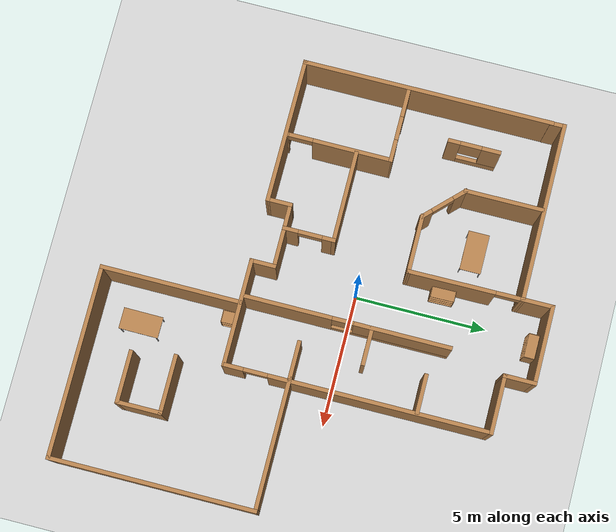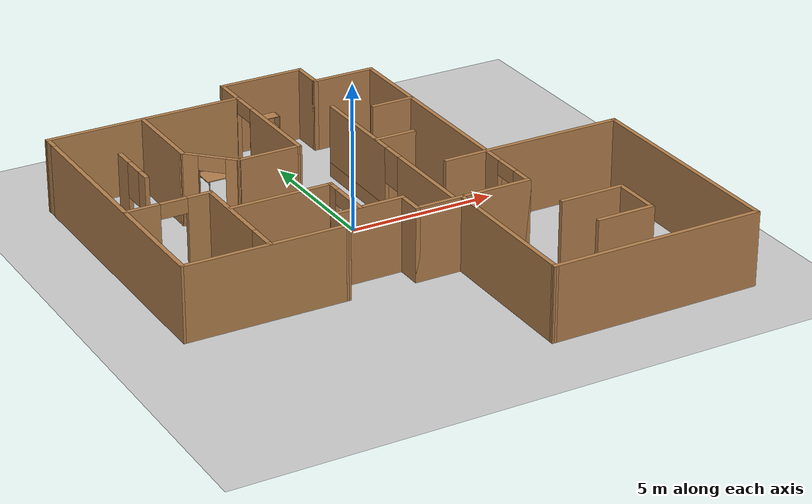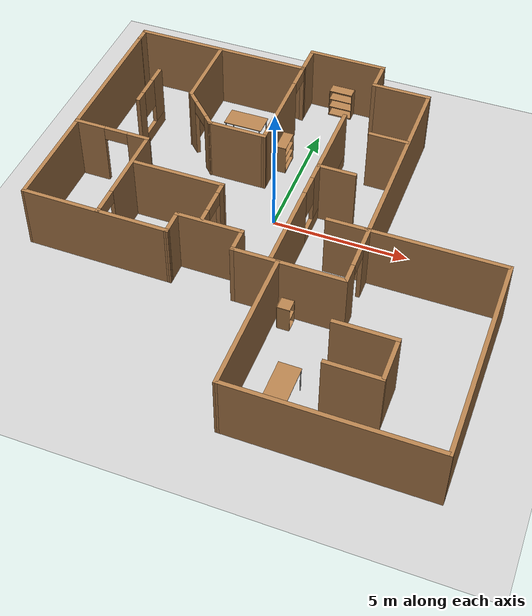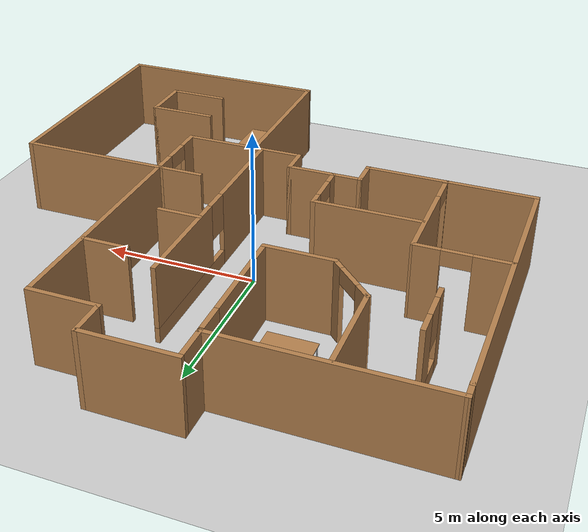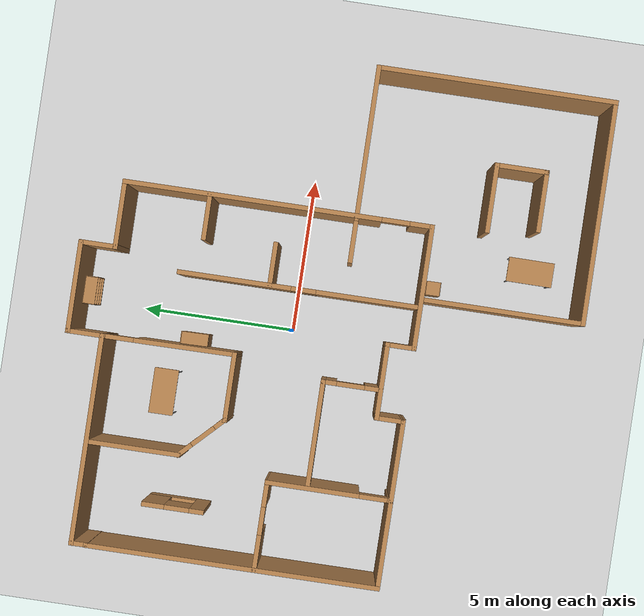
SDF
<sdf version="1.7">
 <world name="default">
  <light name="sun" type="directional">
   <pose>0 0 10 0 -0 0</pose>
   <diffuse>0.8 0.8 0.8 1</diffuse>
   <specular>0.2 0.2 0.2 1</specular>
   <attenuation>
    <range>1000</range>
    <constant>0.9</constant>
    <linear>0.01</linear>
    <quadratic>0.001</quadratic>
   </attenuation>
   <direction>-0.5 0.1 -0.9</direction>
   <spot><inner_angle>0</inner_angle><outer_angle>0</outer_angle><falloff>0</falloff></spot>
  </light>
  <model name="ground_plane">
   <static>1</static>
   <link name="link">
    <collision name="collision">
     <geometry><plane><normal>0 0 1</normal><size>100 100</size></plane></geometry>
     <surface><friction><ode><mu>100</mu><mu2>50</mu2></ode></friction></surface>
    </collision>
    <visual name="visual">
     <cast_shadows>0</cast_shadows>
     <geometry><plane><normal>0 0 1</normal><size>100 100</size></plane></geometry>
     <material>
      <script><uri>file://media/materials/scripts/gazebo.material</uri><name>Gazebo/Grey</name></script>
     </material>
    </visual>
   </link>
  </model>
  <gravity>0 0 -9.8</gravity>
  <magnetic_field>6e-06 2.3e-05 -4.2e-05</magnetic_field>
  <atmosphere type="adiabatic"/>
  <physics type="ode">
   <max_step_size>0.001</max_step_size>
   <real_time_factor>1</real_time_factor>
   <real_time_update_rate>1000</real_time_update_rate>
  </physics>
  <scene><ambient>0.4 0.4 0.4 1</ambient><background>0.7 0.7 0.7 1</background><shadows>1</shadows></scene>
  <audio><device>default</device></audio>
  <spherical_coordinates>
   <surface_model>EARTH_WGS84</surface_model>
   <latitude_deg>0</latitude_deg>
   <longitude_deg>0</longitude_deg>
   <elevation>0</elevation>
   <heading_deg>0</heading_deg>
  </spherical_coordinates>
  <model name="office_floor_plan">
   <pose>0.49547 -1.06959 0 0 -0 0</pose>
   <link name="Wall_20">
    <collision name="Wall_20_Collision">
     <geometry><box><size>9.51 0.15 2.5</size></box></geometry>
     <pose>0 0 1.25 0 -0 0</pose>
    </collision>
    <visual name="Wall_20_Visual">
     <pose>0 0 1.25 0 -0 0</pose>
     <geometry><box><size>9.51 0.15 2.5</size></box></geometry>
     <material>
      <script><uri>file://media/materials/scripts/gazebo.material</uri><name>Gazebo/Wood</name></script>
      <ambient>1 1 1 1</ambient>
     </material>
     <meta><layer>0</layer></meta>
    </visual>
    <pose>-8.18167 1.82789 0 0 -0 -1.5708</pose>
   </link>
   <link name="Wall_22">
    <pose>3.41833 2.04289 0 0 -0 1.5708</pose>
    <visual name="Wall_22_Visual_0">
     <pose>-4.60429 0 1.25 0 -0 0</pose>
     <geometry><box><size>0.791419 0.15 2.5</size></box></geometry>
     <material>
      <script><uri>file://media/materials/scripts/gazebo.material</uri><name>Gazebo/Wood</name></script>
      <ambient>1 1 1 1</ambient>
     </material>
     <meta><layer>0</layer></meta>
    </visual>
    <collision name="Wall_22_Collision_0">
     <geometry><box><size>0.791419 0.15 2.5</size></box></geometry>
     <pose>-4.60429 0 1.25 0 -0 0</pose>
    </collision>
    <visual name="Wall_22_Visual_1">
     <pose>0.84571 0 1.25 0 -0 0</pose>
     <geometry><box><size>8.30858 0.15 2.5</size></box></geometry>
     <material>
      <script><uri>file://media/materials/scripts/gazebo.material</uri><name>Gazebo/Wood</name></script>
      <ambient>1 1 1 1</ambient>
     </material>
     <meta><layer>0</layer></meta>
    </visual>
    <collision name="Wall_22_Collision_1">
     <geometry><box><size>8.30858 0.15 2.5</size></box></geometry>
     <pose>0.84571 0 1.25 0 -0 0</pose>
    </collision>
    <visual name="Wall_22_Visual_2">
     <pose>-3.75858 0 2.25 0 -0 0</pose>
     <geometry><box><size>0.9 0.15 0.5</size></box></geometry>
     <material>
      <script><uri>file://media/materials/scripts/gazebo.material</uri><name>Gazebo/Wood</name></script>
      <ambient>1 1 1 1</ambient>
     </material>
     <meta><layer>0</layer></meta>
    </visual>
    <collision name="Wall_22_Collision_2">
     <geometry><box><size>0.9 0.15 0.5</size></box></geometry>
     <pose>-3.75858 0 2.25 0 -0 0</pose>
    </collision>
   </link>
   <link name="Wall_23">
    <collision name="Wall_23_Collision">
     <geometry><box><size>2.25 0.15 2.5</size></box></geometry>
     <pose>0 0 1.25 0 -0 0</pose>
    </collision>
    <visual name="Wall_23_Visual">
     <pose>0 0 1.25 0 -0 0</pose>
     <geometry><box><size>2.25 0.15 2.5</size></box></geometry>
     <material>
      <script><uri>file://media/materials/scripts/gazebo.material</uri><name>Gazebo/Wood</name></script>
      <ambient>1 1 1 1</ambient>
     </material>
     <meta><layer>0</layer></meta>
    </visual>
    <pose>2.36833 6.9679 0 0 -0 3.14159</pose>
   </link>
   <link name="Wall_24">
    <collision name="Wall_24_Collision">
     <geometry><box><size>1.25 0.15 2.5</size></box></geometry>
     <pose>0 0 1.25 0 -0 0</pose>
    </collision>
    <visual name="Wall_24_Visual">
     <pose>0 0 1.25 0 -0 0</pose>
     <geometry><box><size>1.25 0.15 2.5</size></box></geometry>
     <material>
      <script><uri>file://media/materials/scripts/gazebo.material</uri><name>Gazebo/Wood</name></script>
      <ambient>1 1 1 1</ambient>
     </material>
     <meta><layer>0</layer></meta>
    </visual>
    <pose>1.31833 7.51789 0 0 -0 1.5708</pose>
   </link>
   <link name="Wall_25">
    <collision name="Wall_25_Collision">
     <geometry><box><size>3 0.15 2.5</size></box></geometry>
     <pose>0 0 1.25 0 -0 0</pose>
    </collision>
    <visual name="Wall_25_Visual">
     <pose>0 0 1.25 0 -0 0</pose>
     <geometry><box><size>3 0.15 2.5</size></box></geometry>
     <material>
      <script><uri>file://media/materials/scripts/gazebo.material</uri><name>Gazebo/Wood</name></script>
      <ambient>1 1 1 1</ambient>
     </material>
     <meta><layer>0</layer></meta>
    </visual>
    <pose>-0.106671 8.06789 0 0 -0 3.14159</pose>
   </link>
   <link name="Wall_26">
    <collision name="Wall_26_Collision">
     <geometry><box><size>1.25 0.15 2.5</size></box></geometry>
     <pose>0 0 1.25 0 -0 0</pose>
    </collision>
    <visual name="Wall_26_Visual">
     <pose>0 0 1.25 0 -0 0</pose>
     <geometry><box><size>1.25 0.15 2.5</size></box></geometry>
     <material>
      <script><uri>file://media/materials/scripts/gazebo.material</uri><name>Gazebo/Wood</name></script>
      <ambient>1 1 1 1</ambient>
     </material>
     <meta><layer>0</layer></meta>
    </visual>
    <pose>-1.53167 7.51789 0 0 -0 -1.5708</pose>
   </link>
   <link name="Wall_30">
    <collision name="Wall_30_Collision">
     <geometry><box><size>6.79806 0.15 2.5</size></box></geometry>
     <pose>0 0 1.25 0 -0 0</pose>
    </collision>
    <visual name="Wall_30_Visual">
     <pose>0 0 1.25 0 -0 0</pose>
     <geometry><box><size>6.79806 0.15 2.5</size></box></geometry>
     <material>
      <script><uri>file://media/materials/scripts/gazebo.material</uri><name>Gazebo/Wood</name></script>
      <ambient>1 1 1 1</ambient>
     </material>
     <meta><layer>0</layer></meta>
    </visual>
    <pose>-4.8557 6.97008 0 0 -0 3.14093</pose>
   </link>
   <link name="Wall_31">
    <collision name="Wall_31_Collision">
     <geometry><box><size>0.614889 0.15 2.5</size></box></geometry>
     <pose>0 0 1.25 0 -0 0</pose>
    </collision>
    <visual name="Wall_31_Visual">
     <pose>0 0 1.25 0 -0 0</pose>
     <geometry><box><size>0.614889 0.15 2.5</size></box></geometry>
     <material>
      <script><uri>file://media/materials/scripts/gazebo.material</uri><name>Gazebo/Wood</name></script>
      <ambient>1 1 1 1</ambient>
     </material>
     <meta><layer>0</layer></meta>
    </visual>
    <pose>-8.1757 6.74008 0 0 -0 -1.55344</pose>
   </link>
   <link name="Wall_33">
    <collision name="Wall_33_Collision">
     <geometry><box><size>5.49008 0.15 2.5</size></box></geometry>
     <pose>0 0 1.25 0 -0 0</pose>
    </collision>
    <visual name="Wall_33_Visual">
     <pose>0 0 1.25 0 -0 0</pose>
     <geometry><box><size>5.49008 0.15 2.5</size></box></geometry>
     <material>
      <script><uri>file://media/materials/scripts/gazebo.material</uri><name>Gazebo/Wood</name></script>
      <ambient>1 1 1 1</ambient>
     </material>
     <meta><layer>0</layer></meta>
    </visual>
    <pose>-5.50167 -2.86711 0 0 -0 -0.005618</pose>
   </link>
   <link name="Wall_34">
    <collision name="Wall_34_Collision">
     <geometry><box><size>1 0.15 2.5</size></box></geometry>
     <pose>0 0 1.25 0 -0 0</pose>
    </collision>
    <visual name="Wall_34_Visual">
     <pose>0 0 1.25 0 -0 0</pose>
     <geometry><box><size>1 0.15 2.5</size></box></geometry>
     <material>
      <script><uri>file://media/materials/scripts/gazebo.material</uri><name>Gazebo/Wood</name></script>
      <ambient>1 1 1 1</ambient>
     </material>
     <meta><layer>0</layer></meta>
    </visual>
    <pose>-2.83167 -2.45711 0 0 -0 1.5708</pose>
   </link>
   <link name="Wall_35">
    <collision name="Wall_35_Collision">
     <geometry><box><size>2.5 0.15 2.5</size></box></geometry>
     <pose>0 0 1.25 0 -0 0</pose>
    </collision>
    <visual name="Wall_35_Visual">
     <pose>0 0 1.25 0 -0 0</pose>
     <geometry><box><size>2.5 0.15 2.5</size></box></geometry>
     <material>
      <script><uri>file://media/materials/scripts/gazebo.material</uri><name>Gazebo/Wood</name></script>
      <ambient>1 1 1 1</ambient>
     </material>
     <meta><layer>0</layer></meta>
    </visual>
    <pose>-1.65667 -2.03211 0 0 -0 0</pose>
   </link>
   <link name="Wall_36">
    <collision name="Wall_36_Collision">
     <geometry><box><size>1 0.15 2.5</size></box></geometry>
     <pose>0 0 1.25 0 -0 0</pose>
    </collision>
    <visual name="Wall_36_Visual">
     <pose>0 0 1.25 0 -0 0</pose>
     <geometry><box><size>1 0.15 2.5</size></box></geometry>
     <material>
      <script><uri>file://media/materials/scripts/gazebo.material</uri><name>Gazebo/Wood</name></script>
      <ambient>1 1 1 1</ambient>
     </material>
     <meta><layer>0</layer></meta>
    </visual>
    <pose>-0.481671 -2.45711 0 0 -0 -1.5708</pose>
   </link>
   <link name="Wall_37">
    <collision name="Wall_37_Collision">
     <geometry><box><size>4.05 0.15 2.5</size></box></geometry>
     <pose>0 0 1.25 0 -0 0</pose>
    </collision>
    <visual name="Wall_37_Visual">
     <pose>0 0 1.25 0 -0 0</pose>
     <geometry><box><size>4.05 0.15 2.5</size></box></geometry>
     <material>
      <script><uri>file://media/materials/scripts/gazebo.material</uri><name>Gazebo/Wood</name></script>
      <ambient>1 1 1 1</ambient>
     </material>
     <meta><layer>0</layer></meta>
    </visual>
    <pose>1.46833 -2.88211 0 0 -0 0</pose>
   </link>
   <link name="Wall_39">
    <collision name="Wall_39_Collision">
     <geometry><box><size>3 0.15 2.5</size></box></geometry>
     <pose>0 0 1.25 0 -0 0</pose>
    </collision>
    <visual name="Wall_39_Visual">
     <pose>0 0 1.25 0 -0 0</pose>
     <geometry><box><size>3 0.15 2.5</size></box></geometry>
     <material>
      <script><uri>file://media/materials/scripts/gazebo.material</uri><name>Gazebo/Wood</name></script>
      <ambient>1 1 1 1</ambient>
     </material>
     <meta><layer>0</layer></meta>
    </visual>
    <pose>-4.91773 5.45746 0 0 -0 -1.5708</pose>
   </link>
   <link name="Wall_40">
    <pose>-4.26366 3.37838 0 0 -0 -0.785398</pose>
    <visual name="Wall_40_Visual_0">
     <pose>-0.691821 0 1.25 0 -0 0</pose>
     <geometry><box><size>0.616357 0.15 2.5</size></box></geometry>
     <material>
      <script><uri>file://media/materials/scripts/gazebo.material</uri><name>Gazebo/Wood</name></script>
      <ambient>1 1 1 1</ambient>
     </material>
     <meta><layer>0</layer></meta>
    </visual>
    <collision name="Wall_40_Collision_0">
     <geometry><box><size>0.616357 0.15 2.5</size></box></geometry>
     <pose>-0.691821 0 1.25 0 -0 0</pose>
    </collision>
    <visual name="Wall_40_Visual_1">
     <pose>0.758179 0 1.25 0 -0 0</pose>
     <geometry><box><size>0.483643 0.15 2.5</size></box></geometry>
     <material>
      <script><uri>file://media/materials/scripts/gazebo.material</uri><name>Gazebo/Wood</name></script>
      <ambient>1 1 1 1</ambient>
     </material>
     <meta><layer>0</layer></meta>
    </visual>
    <collision name="Wall_40_Collision_1">
     <geometry><box><size>0.483643 0.15 2.5</size></box></geometry>
     <pose>0.758179 0 1.25 0 -0 0</pose>
    </collision>
    <visual name="Wall_40_Visual_2">
     <pose>0.066357 0 2.25 0 -0 0</pose>
     <geometry><box><size>0.9 0.15 0.5</size></box></geometry>
     <material>
      <script><uri>file://media/materials/scripts/gazebo.material</uri><name>Gazebo/Wood</name></script>
      <ambient>1 1 1 1</ambient>
     </material>
     <meta><layer>0</layer></meta>
    </visual>
    <collision name="Wall_40_Collision_2">
     <geometry><box><size>0.9 0.15 0.5</size></box></geometry>
     <pose>0.066357 0 2.25 0 -0 0</pose>
    </collision>
   </link>
   <link name="Wall_41">
    <collision name="Wall_41_Collision">
     <geometry><box><size>2.25 0.15 2.5</size></box></geometry>
     <pose>0 0 1.25 0 -0 0</pose>
    </collision>
    <visual name="Wall_41_Visual">
     <pose>0 0 1.25 0 -0 0</pose>
     <geometry><box><size>2.25 0.15 2.5</size></box></geometry>
     <material>
      <script><uri>file://media/materials/scripts/gazebo.material</uri><name>Gazebo/Wood</name></script>
      <ambient>1 1 1 1</ambient>
     </material>
     <meta><layer>0</layer></meta>
    </visual>
    <pose>-2.55959 2.72431 0 0 -0 0</pose>
   </link>
   <link name="Wall_42">
    <pose>-1.52063 4.8461 0 0 -0 1.576</pose>
    <visual name="Wall_42_Visual_0">
     <pose>-0.539349 0 1.25 0 -0 0</pose>
     <geometry><box><size>3.31494 0.15 2.5</size></box></geometry>
     <material>
      <script><uri>file://media/materials/scripts/gazebo.material</uri><name>Gazebo/Wood</name></script>
      <ambient>1 1 1 1</ambient>
     </material>
     <meta><layer>0</layer></meta>
    </visual>
    <collision name="Wall_42_Collision_0">
     <geometry><box><size>3.31494 0.15 2.5</size></box></geometry>
     <pose>-0.539349 0 1.25 0 -0 0</pose>
    </collision>
    <visual name="Wall_42_Visual_1">
     <pose>2.10747 0 1.25 0 -0 0</pose>
     <geometry><box><size>0.178699 0.15 2.5</size></box></geometry>
     <material>
      <script><uri>file://media/materials/scripts/gazebo.material</uri><name>Gazebo/Wood</name></script>
      <ambient>1 1 1 1</ambient>
     </material>
     <meta><layer>0</layer></meta>
    </visual>
    <collision name="Wall_42_Collision_1">
     <geometry><box><size>0.178699 0.15 2.5</size></box></geometry>
     <pose>2.10747 0 1.25 0 -0 0</pose>
    </collision>
    <visual name="Wall_42_Visual_2">
     <pose>1.56812 0 2.25 0 -0 0</pose>
     <geometry><box><size>0.9 0.15 0.5</size></box></geometry>
     <material>
      <script><uri>file://media/materials/scripts/gazebo.material</uri><name>Gazebo/Wood</name></script>
      <ambient>1 1 1 1</ambient>
     </material>
     <meta><layer>0</layer></meta>
    </visual>
    <collision name="Wall_42_Collision_2">
     <geometry><box><size>0.9 0.15 0.5</size></box></geometry>
     <pose>1.56812 0 2.25 0 -0 0</pose>
    </collision>
   </link>
   <link name="Wall_44">
    <pose>-6.76547 1.10731 0 0 -0 -0.002427</pose>
    <visual name="Wall_44_Visual_0">
     <pose>-0.881804 0 1.25 0 -0 0</pose>
     <geometry><box><size>1.19088 0.15 2.5</size></box></geometry>
     <material>
      <script><uri>file://media/materials/scripts/gazebo.material</uri><name>Gazebo/Wood</name></script>
      <ambient>1 1 1 1</ambient>
     </material>
     <meta><layer>0</layer></meta>
    </visual>
    <collision name="Wall_44_Collision_0">
     <geometry><box><size>1.19088 0.15 2.5</size></box></geometry>
     <pose>-0.881804 0 1.25 0 -0 0</pose>
    </collision>
    <visual name="Wall_44_Visual_1">
     <pose>1.04544 0 1.25 0 -0 0</pose>
     <geometry><box><size>0.863608 0.15 2.5</size></box></geometry>
     <material>
      <script><uri>file://media/materials/scripts/gazebo.material</uri><name>Gazebo/Wood</name></script>
      <ambient>1 1 1 1</ambient>
     </material>
     <meta><layer>0</layer></meta>
    </visual>
    <collision name="Wall_44_Collision_1">
     <geometry><box><size>0.863608 0.15 2.5</size></box></geometry>
     <pose>1.04544 0 1.25 0 -0 0</pose>
    </collision>
    <visual name="Wall_44_Visual_2">
     <pose>0.163635 0 2.25 0 -0 0</pose>
     <geometry><box><size>0.9 0.15 0.5</size></box></geometry>
     <material>
      <script><uri>file://media/materials/scripts/gazebo.material</uri><name>Gazebo/Wood</name></script>
      <ambient>1 1 1 1</ambient>
     </material>
     <meta><layer>0</layer></meta>
    </visual>
    <collision name="Wall_44_Collision_2">
     <geometry><box><size>0.9 0.15 0.5</size></box></geometry>
     <pose>0.163635 0 2.25 0 -0 0</pose>
    </collision>
   </link>
   <link name="Wall_45">
    <pose>-5.36714 -0.871275 0 0 -0 -1.57278</pose>
    <visual name="Wall_45_Visual_0">
     <pose>-0.538964 0 1.25 0 -0 0</pose>
     <geometry><box><size>3.02244 0.15 2.5</size></box></geometry>
     <material>
      <script><uri>file://media/materials/scripts/gazebo.material</uri><name>Gazebo/Wood</name></script>
      <ambient>1 1 1 1</ambient>
     </material>
     <meta><layer>0</layer></meta>
    </visual>
    <collision name="Wall_45_Collision_0">
     <geometry><box><size>3.02244 0.15 2.5</size></box></geometry>
     <pose>-0.538964 0 1.25 0 -0 0</pose>
    </collision>
    <visual name="Wall_45_Visual_1">
     <pose>1.96122 0 1.25 0 -0 0</pose>
     <geometry><box><size>0.177928 0.15 2.5</size></box></geometry>
     <material>
      <script><uri>file://media/materials/scripts/gazebo.material</uri><name>Gazebo/Wood</name></script>
      <ambient>1 1 1 1</ambient>
     </material>
     <meta><layer>0</layer></meta>
    </visual>
    <collision name="Wall_45_Collision_1">
     <geometry><box><size>0.177928 0.15 2.5</size></box></geometry>
     <pose>1.96122 0 1.25 0 -0 0</pose>
    </collision>
    <visual name="Wall_45_Visual_2">
     <pose>1.42226 0 2.25 0 -0 0</pose>
     <geometry><box><size>0.9 0.15 0.5</size></box></geometry>
     <material>
      <script><uri>file://media/materials/scripts/gazebo.material</uri><name>Gazebo/Wood</name></script>
      <ambient>1 1 1 1</ambient>
     </material>
     <meta><layer>0</layer></meta>
    </visual>
    <collision name="Wall_45_Collision_2">
     <geometry><box><size>0.9 0.15 0.5</size></box></geometry>
     <pose>1.42226 0 2.25 0 -0 0</pose>
    </collision>
   </link>
   <link name="Wall_47">
    <pose>0.830592 1.04109 0 0 -0 1.5708</pose>
    <visual name="Wall_47_Visual_0">
     <pose>-2.22581 0 1.25 0 -0 0</pose>
     <geometry><box><size>3.29838 0.15 2.5</size></box></geometry>
     <material>
      <script><uri>file://media/materials/scripts/gazebo.material</uri><name>Gazebo/Wood</name></script>
      <ambient>1 1 1 1</ambient>
     </material>
     <meta><layer>0</layer></meta>
    </visual>
    <collision name="Wall_47_Collision_0">
     <geometry><box><size>3.29838 0.15 2.5</size></box></geometry>
     <pose>-2.22581 0 1.25 0 -0 0</pose>
    </collision>
    <visual name="Wall_47_Visual_1">
     <pose>1.64919 0 0.25 0 -0 0</pose>
     <geometry><box><size>4.45162 0.15 0.5</size></box></geometry>
     <material>
      <script><uri>file://media/materials/scripts/gazebo.material</uri><name>Gazebo/Wood</name></script>
      <ambient>1 1 1 1</ambient>
     </material>
     <meta><layer>0</layer></meta>
    </visual>
    <collision name="Wall_47_Collision_1">
     <geometry><box><size>4.45162 0.15 0.5</size></box></geometry>
     <pose>1.64919 0 0.25 0 -0 0</pose>
    </collision>
    <visual name="Wall_47_Visual_2">
     <pose>2.04919 0 1.5 0 -0 0</pose>
     <geometry><box><size>3.65162 0.15 2</size></box></geometry>
     <material>
      <script><uri>file://media/materials/scripts/gazebo.material</uri><name>Gazebo/Wood</name></script>
      <ambient>1 1 1 1</ambient>
     </material>
     <meta><layer>0</layer></meta>
    </visual>
    <collision name="Wall_47_Collision_2">
     <geometry><box><size>3.65162 0.15 2</size></box></geometry>
     <pose>2.04919 0 1.5 0 -0 0</pose>
    </collision>
    <visual name="Wall_47_Visual_3">
     <pose>-0.176619 0 1.9 0 -0 0</pose>
     <geometry><box><size>0.8 0.15 1.2</size></box></geometry>
     <material>
      <script><uri>file://media/materials/scripts/gazebo.material</uri><name>Gazebo/Wood</name></script>
      <ambient>1 1 1 1</ambient>
     </material>
     <meta><layer>0</layer></meta>
    </visual>
    <collision name="Wall_47_Collision_3">
     <geometry><box><size>0.8 0.15 1.2</size></box></geometry>
     <pose>-0.176619 0 1.9 0 -0 0</pose>
    </collision>
   </link>
   <link name="Wall_49">
    <collision name="Wall_49_Collision">
     <geometry><box><size>1.5 0.15 2.5</size></box></geometry>
     <pose>0 0 1.25 0 -0 0</pose>
    </collision>
    <visual name="Wall_49_Visual">
     <pose>0 0 1.25 0 -0 0</pose>
     <geometry><box><size>1.5 0.15 2.5</size></box></geometry>
     <material>
      <script><uri>file://media/materials/scripts/gazebo.material</uri><name>Gazebo/Wood</name></script>
      <ambient>1 1 1 1</ambient>
     </material>
     <meta><layer>0</layer></meta>
    </visual>
    <pose>2.69165 4.23711 0 0 -0 3.14159</pose>
   </link>
   <link name="Wall_52">
    <collision name="Wall_52_Collision">
     <geometry><box><size>1.42706 0.15 2.5</size></box></geometry>
     <pose>0 0 1.25 0 -0 0</pose>
    </collision>
    <visual name="Wall_52_Visual">
     <pose>0 0 1.25 0 -0 0</pose>
     <geometry><box><size>1.42706 0.15 2.5</size></box></geometry>
     <material>
      <script><uri>file://media/materials/scripts/gazebo.material</uri><name>Gazebo/Wood</name></script>
      <ambient>1 1 1 1</ambient>
     </material>
     <meta><layer>0</layer></meta>
    </visual>
    <pose>1.50708 1.94605 0 0 -0 -0.000204</pose>
   </link>
   <link name="Wall_54">
    <collision name="Wall_54_Collision">
     <geometry><box><size>1.5 0.15 2.5</size></box></geometry>
     <pose>0 0 1.25 0 -0 0</pose>
    </collision>
    <visual name="Wall_54_Visual">
     <pose>0 0 1.25 0 -0 0</pose>
     <geometry><box><size>1.5 0.15 2.5</size></box></geometry>
     <material>
      <script><uri>file://media/materials/scripts/gazebo.material</uri><name>Gazebo/Wood</name></script>
      <ambient>1 1 1 1</ambient>
     </material>
     <meta><layer>0</layer></meta>
    </visual>
    <pose>2.65667 -0.467713 0 0 -0 3.14159</pose>
   </link>
   <link name="Wall_58">
    <pose>-1.94153 -1.10573 0 0 -0 1.5708</pose>
    <visual name="Wall_58_Visual_0">
     <pose>-0.703247 0 1.25 0 -0 0</pose>
     <geometry><box><size>0.593507 0.15 2.5</size></box></geometry>
     <material>
      <script><uri>file://media/materials/scripts/gazebo.material</uri><name>Gazebo/Wood</name></script>
      <ambient>1 1 1 1</ambient>
     </material>
     <meta><layer>0</layer></meta>
    </visual>
    <collision name="Wall_58_Collision_0">
     <geometry><box><size>0.593507 0.15 2.5</size></box></geometry>
     <pose>-0.703247 0 1.25 0 -0 0</pose>
    </collision>
    <visual name="Wall_58_Visual_1">
     <pose>0.746753 0 1.25 0 -0 0</pose>
     <geometry><box><size>0.506493 0.15 2.5</size></box></geometry>
     <material>
      <script><uri>file://media/materials/scripts/gazebo.material</uri><name>Gazebo/Wood</name></script>
      <ambient>1 1 1 1</ambient>
     </material>
     <meta><layer>0</layer></meta>
    </visual>
    <collision name="Wall_58_Collision_1">
     <geometry><box><size>0.506493 0.15 2.5</size></box></geometry>
     <pose>0.746753 0 1.25 0 -0 0</pose>
    </collision>
    <visual name="Wall_58_Visual_2">
     <pose>0.043507 0 2.25 0 -0 0</pose>
     <geometry><box><size>0.9 0.15 0.5</size></box></geometry>
     <material>
      <script><uri>file://media/materials/scripts/gazebo.material</uri><name>Gazebo/Wood</name></script>
      <ambient>1 1 1 1</ambient>
     </material>
     <meta><layer>0</layer></meta>
    </visual>
    <collision name="Wall_58_Collision_2">
     <geometry><box><size>0.9 0.15 0.5</size></box></geometry>
     <pose>0.043507 0 2.25 0 -0 0</pose>
    </collision>
   </link>
   <link name="Wall_59">
    <collision name="Wall_59_Collision">
     <geometry><box><size>3.5 0.15 2.5</size></box></geometry>
     <pose>0 0 1.25 0 -0 0</pose>
    </collision>
    <visual name="Wall_59_Visual">
     <pose>0 0 1.25 0 -0 0</pose>
     <geometry><box><size>3.5 0.15 2.5</size></box></geometry>
     <material>
      <script><uri>file://media/materials/scripts/gazebo.material</uri><name>Gazebo/Wood</name></script>
      <ambient>1 1 1 1</ambient>
     </material>
     <meta><layer>0</layer></meta>
    </visual>
    <pose>-3.61653 -0.180735 0 0 -0 3.14159</pose>
   </link>
   <link name="Wall_61">
    <pose>-6.61551 3.9535 0 0 -0 1.5708</pose>
    <visual name="Wall_61_Visual_0">
     <pose>-0.762807 0 1.25 0 -0 0</pose>
     <geometry><box><size>0.474386 0.15 2.5</size></box></geometry>
     <material>
      <script><uri>file://media/materials/scripts/gazebo.material</uri><name>Gazebo/Wood</name></script>
      <ambient>1 1 1 1</ambient>
     </material>
     <meta><layer>0</layer></meta>
    </visual>
    <collision name="Wall_61_Collision_0">
     <geometry><box><size>0.474386 0.15 2.5</size></box></geometry>
     <pose>-0.762807 0 1.25 0 -0 0</pose>
    </collision>
    <visual name="Wall_61_Visual_1">
     <pose>0.237193 0 0.25 0 -0 0</pose>
     <geometry><box><size>1.52561 0.15 0.5</size></box></geometry>
     <material>
      <script><uri>file://media/materials/scripts/gazebo.material</uri><name>Gazebo/Wood</name></script>
      <ambient>1 1 1 1</ambient>
     </material>
     <meta><layer>0</layer></meta>
    </visual>
    <collision name="Wall_61_Collision_1">
     <geometry><box><size>1.52561 0.15 0.5</size></box></geometry>
     <pose>0.237193 0 0.25 0 -0 0</pose>
    </collision>
    <visual name="Wall_61_Visual_2">
     <pose>0.637193 0 1.5 0 -0 0</pose>
     <geometry><box><size>0.725614 0.15 2</size></box></geometry>
     <material>
      <script><uri>file://media/materials/scripts/gazebo.material</uri><name>Gazebo/Wood</name></script>
      <ambient>1 1 1 1</ambient>
     </material>
     <meta><layer>0</layer></meta>
    </visual>
    <collision name="Wall_61_Collision_2">
     <geometry><box><size>0.725614 0.15 2</size></box></geometry>
     <pose>0.637193 0 1.5 0 -0 0</pose>
    </collision>
    <visual name="Wall_61_Visual_3">
     <pose>-0.125614 0 1.9 0 -0 0</pose>
     <geometry><box><size>0.8 0.15 1.2</size></box></geometry>
     <material>
      <script><uri>file://media/materials/scripts/gazebo.material</uri><name>Gazebo/Wood</name></script>
      <ambient>1 1 1 1</ambient>
     </material>
     <meta><layer>0</layer></meta>
    </visual>
    <collision name="Wall_61_Collision_3">
     <geometry><box><size>0.8 0.15 1.2</size></box></geometry>
     <pose>-0.125614 0 1.9 0 -0 0</pose>
    </collision>
   </link>
   <link name="Wall_63">
    <collision name="Wall_63_Collision">
     <geometry><box><size>5 0.15 2.5</size></box></geometry>
     <pose>0 0 1.25 0 -0 0</pose>
    </collision>
    <visual name="Wall_63_Visual">
     <pose>0 0 1.25 0 -0 0</pose>
     <geometry><box><size>5 0.15 2.5</size></box></geometry>
     <material>
      <script><uri>file://media/materials/scripts/gazebo.material</uri><name>Gazebo/Wood</name></script>
      <ambient>1 1 1 1</ambient>
     </material>
     <meta><layer>0</layer></meta>
    </visual>
    <pose>5.75667 -0.467713 0 0 -0 0</pose>
   </link>
   <link name="Wall_64">
    <collision name="Wall_64_Collision">
     <geometry><box><size>7.75 0.15 2.5</size></box></geometry>
     <pose>0 0 1.25 0 -0 0</pose>
    </collision>
    <visual name="Wall_64_Visual">
     <pose>0 0 1.25 0 -0 0</pose>
     <geometry><box><size>7.75 0.15 2.5</size></box></geometry>
     <material>
      <script><uri>file://media/materials/scripts/gazebo.material</uri><name>Gazebo/Wood</name></script>
      <ambient>1 1 1 1</ambient>
     </material>
     <meta><layer>0</layer></meta>
    </visual>
    <pose>8.18167 -4.26771 0 0 -0 -1.5708</pose>
   </link>
   <link name="Wall_65">
    <collision name="Wall_65_Collision">
     <geometry><box><size>7.25 0.15 2.5</size></box></geometry>
     <pose>0 0 1.25 0 -0 0</pose>
    </collision>
    <visual name="Wall_65_Visual">
     <pose>0 0 1.25 0 -0 0</pose>
     <geometry><box><size>7.25 0.15 2.5</size></box></geometry>
     <material>
      <script><uri>file://media/materials/scripts/gazebo.material</uri><name>Gazebo/Wood</name></script>
      <ambient>1 1 1 1</ambient>
     </material>
     <meta><layer>0</layer></meta>
    </visual>
    <pose>4.63167 -8.06771 0 0 -0 3.14159</pose>
   </link>
   <link name="Wall_66">
    <collision name="Wall_66_Collision">
     <geometry><box><size>5.31352 0.15 2.5</size></box></geometry>
     <pose>0 0 1.25 0 -0 0</pose>
    </collision>
    <visual name="Wall_66_Visual">
     <pose>0 0 1.25 0 -0 0</pose>
     <geometry><box><size>5.31352 0.15 2.5</size></box></geometry>
     <material>
      <script><uri>file://media/materials/scripts/gazebo.material</uri><name>Gazebo/Wood</name></script>
      <ambient>1 1 1 1</ambient>
     </material>
     <meta><layer>0</layer></meta>
    </visual>
    <pose>1.08791 -5.48596 0 0 -0 1.56838</pose>
   </link>
   <link name="Wall_68">
    <collision name="Wall_68_Collision">
     <geometry><box><size>2.25 0.15 2.5</size></box></geometry>
     <pose>0 0 1.25 0 -0 0</pose>
    </collision>
    <visual name="Wall_68_Visual">
     <pose>0 0 1.25 0 -0 0</pose>
     <geometry><box><size>2.25 0.15 2.5</size></box></geometry>
     <material>
      <script><uri>file://media/materials/scripts/gazebo.material</uri><name>Gazebo/Wood</name></script>
      <ambient>1 1 1 1</ambient>
     </material>
     <meta><layer>0</layer></meta>
    </visual>
    <pose>4.61363 -4.62849 0 0 -0 0</pose>
   </link>
   <link name="Wall_69">
    <collision name="Wall_69_Collision">
     <geometry><box><size>1.75 0.15 2.5</size></box></geometry>
     <pose>0 0 1.25 0 -0 0</pose>
    </collision>
    <visual name="Wall_69_Visual">
     <pose>0 0 1.25 0 -0 0</pose>
     <geometry><box><size>1.75 0.15 2.5</size></box></geometry>
     <material>
      <script><uri>file://media/materials/scripts/gazebo.material</uri><name>Gazebo/Wood</name></script>
      <ambient>1 1 1 1</ambient>
     </material>
     <meta><layer>0</layer></meta>
    </visual>
    <pose>5.66363 -5.42849 0 0 -0 -1.5708</pose>
   </link>
   <link name="Wall_70">
    <collision name="Wall_70_Collision">
     <geometry><box><size>2 0.15 2.5</size></box></geometry>
     <pose>0 0 1.25 0 -0 0</pose>
    </collision>
    <visual name="Wall_70_Visual">
     <pose>0 0 1.25 0 -0 0</pose>
     <geometry><box><size>2 0.15 2.5</size></box></geometry>
     <material>
      <script><uri>file://media/materials/scripts/gazebo.material</uri><name>Gazebo/Wood</name></script>
      <ambient>1 1 1 1</ambient>
     </material>
     <meta><layer>0</layer></meta>
    </visual>
    <pose>4.73863 -6.22849 0 0 -0 3.14159</pose>
   </link>
   <static>1</static>
  </model>
  <model name="table">
   <static>1</static>
   <link name="link">
    <collision name="surface">
     <pose>0 0 1 0 -0 0</pose>
     <geometry><box><size>1.5 0.8 0.03</size></box></geometry>
     <surface><friction><ode><mu>0.6</mu><mu2>0.6</mu2></ode></friction></surface>
    </collision>
    <visual name="visual1">
     <pose>0 0 1 0 -0 0</pose>
     <geometry><box><size>1.5 0.8 0.03</size></box></geometry>
     <material>
      <script><uri>file://media/materials/scripts/gazebo.material</uri><name>Gazebo/Wood</name></script>
     </material>
    </visual>
    <collision name="front_left_leg">
     <pose>0.68 0.38 0.5 0 -0 0</pose>
     <geometry><cylinder><radius>0.02</radius><length>1</length></cylinder></geometry>
    </collision>
    <visual name="front_left_leg1">
     <pose>0.68 0.38 0.5 0 -0 0</pose>
     <geometry><cylinder><radius>0.02</radius><length>1</length></cylinder></geometry>
     <material>
      <script><uri>file://media/materials/scripts/gazebo.material</uri><name>Gazebo/Grey</name></script>
     </material>
    </visual>
    <collision name="front_right_leg">
     <pose>0.68 -0.38 0.5 0 -0 0</pose>
     <geometry><cylinder><radius>0.02</radius><length>1</length></cylinder></geometry>
    </collision>
    <visual name="front_right_leg1">
     <pose>0.68 -0.38 0.5 0 -0 0</pose>
     <geometry><cylinder><radius>0.02</radius><length>1</length></cylinder></geometry>
     <material>
      <script><uri>file://media/materials/scripts/gazebo.material</uri><name>Gazebo/Grey</name></script>
     </material>
    </visual>
    <collision name="back_right_leg">
     <pose>-0.68 -0.38 0.5 0 -0 0</pose>
     <geometry><cylinder><radius>0.02</radius><length>1</length></cylinder></geometry>
    </collision>
    <visual name="back_right_leg1">
     <pose>-0.68 -0.38 0.5 0 -0 0</pose>
     <geometry><cylinder><radius>0.02</radius><length>1</length></cylinder></geometry>
     <material>
      <script><uri>file://media/materials/scripts/gazebo.material</uri><name>Gazebo/Grey</name></script>
     </material>
    </visual>
    <collision name="back_left_leg">
     <pose>-0.68 0.38 0.5 0 -0 0</pose>
     <geometry><cylinder><radius>0.02</radius><length>1</length></cylinder></geometry>
    </collision>
    <visual name="back_left_leg1">
     <pose>-0.68 0.38 0.5 0 -0 0</pose>
     <geometry><cylinder><radius>0.02</radius><length>1</length></cylinder></geometry>
     <material>
      <script><uri>file://media/materials/scripts/gazebo.material</uri><name>Gazebo/Grey</name></script>
     </material>
    </visual>
   </link>
   <pose>-2.59086 3.88079 0 0 -0 0</pose>
  </model>
  <model name="cabinet">
   <static>1</static>
   <link name="cabinet_bottom_plate">
    <inertial>
     <pose>0 0 -1 0 -0 0</pose>
     <inertia><ixx>2.05</ixx><ixy>0</ixy><ixz>0</ixz><iyy>2.05</iyy><iyz>0</iyz><izz>2.05</izz></inertia>
     <mass>25</mass>
    </inertial>
    <collision name="cabinet_bottom_plate_geom">
     <pose>0 0 0.01 0 -0 0</pose>
     <geometry><box><size>0.45 0.45 0.02</size></box></geometry>
    </collision>
    <visual name="cabinet_bottom_plate_geom_visual">
     <pose>0 0 0.01 0 -0 0</pose>
     <geometry><box><size>0.45 0.45 0.02</size></box></geometry>
     <material>
      <script><uri>file://media/materials/scripts/gazebo.material</uri><name>Gazebo/Wood</name></script>
     </material>
    </visual>
    <collision name="cabinet_bottom_plate_geom_cabinet_back_plate">
     <pose>0.235 0 0.51 0 -0 0</pose>
     <geometry><box><size>0.02 0.45 1.02</size></box></geometry>
    </collision>
    <visual name="cabinet_bottom_plate_geom_cabinet_back_plate_visual">
     <pose>0.235 0 0.51 0 -0 0</pose>
     <geometry><box><size>0.02 0.45 1.02</size></box></geometry>
     <material>
      <script><uri>file://media/materials/scripts/gazebo.material</uri><name>Gazebo/Wood</name></script>
     </material>
    </visual>
    <collision name="cabinet_bottom_plate_geom_cabinet_left_plate">
     <pose>0 0.235 0.51 0 -0 0</pose>
     <geometry><box><size>0.45 0.02 1.02</size></box></geometry>
    </collision>
    <visual name="cabinet_bottom_plate_geom_cabinet_left_plate_visual">
     <pose>0 0.235 0.51 0 -0 0</pose>
     <geometry><box><size>0.45 0.02 1.02</size></box></geometry>
     <material>
      <script><uri>file://media/materials/scripts/gazebo.material</uri><name>Gazebo/Wood</name></script>
     </material>
    </visual>
    <collision name="cabinet_bottom_plate_geom_cabinet_middle_plate">
     <pose>0 0 0.51 0 -0 0</pose>
     <geometry><box><size>0.45 0.45 0.02</size></box></geometry>
    </collision>
    <visual name="cabinet_bottom_plate_geom_cabinet_middle_plate_visual">
     <pose>0 0 0.51 0 -0 0</pose>
     <geometry><box><size>0.45 0.45 0.02</size></box></geometry>
     <material>
      <script><uri>file://media/materials/scripts/gazebo.material</uri><name>Gazebo/Wood</name></script>
     </material>
    </visual>
    <collision name="cabinet_bottom_plate_geom_cabinet_right_plate">
     <pose>0 -0.235 0.51 0 -0 0</pose>
     <geometry><box><size>0.45 0.02 1.02</size></box></geometry>
    </collision>
    <visual name="cabinet_bottom_plate_geom_cabinet_right_plate_visual">
     <pose>0 -0.235 0.51 0 -0 0</pose>
     <geometry><box><size>0.45 0.02 1.02</size></box></geometry>
     <material>
      <script><uri>file://media/materials/scripts/gazebo.material</uri><name>Gazebo/Wood</name></script>
     </material>
    </visual>
    <collision name="cabinet_bottom_plate_geom_cabinet_top_plate">
     <pose>0 0 1.01 0 -0 0</pose>
     <geometry><box><size>0.45 0.45 0.02</size></box></geometry>
    </collision>
    <visual name="cabinet_bottom_plate_geom_cabinet_top_plate_visual">
     <pose>0 0 1.01 0 -0 0</pose>
     <geometry><box><size>0.45 0.45 0.02</size></box></geometry>
     <material>
      <script><uri>file://media/materials/scripts/gazebo.material</uri><name>Gazebo/Wood</name></script>
     </material>
    </visual>
   </link>
   <pose>2.04146 -4.35414 0 0 0 -3.13227</pose>
  </model>
  <model name="bookshelf">
   <static>1</static>
   <link name="link">
    <inertial><mass>1</mass></inertial>
    <collision name="back">
     <pose>0 0.005 0.6 0 -0 0</pose>
     <geometry><box><size>0.9 0.01 1.2</size></box></geometry>
    </collision>
    <visual name="visual1">
     <pose>0 0.005 0.6 0 -0 0</pose>
     <geometry><box><size>0.9 0.01 1.2</size></box></geometry>
     <material>
      <script><uri>file://media/materials/scripts/gazebo.material</uri><name>Gazebo/Wood</name></script>
     </material>
    </visual>
    <collision name="left_side">
     <pose>0.45 -0.195 0.6 0 -0 0</pose>
     <geometry><box><size>0.02 0.4 1.2</size></box></geometry>
    </collision>
    <visual name="visual2">
     <pose>0.45 -0.195 0.6 0 -0 0</pose>
     <geometry><box><size>0.02 0.4 1.2</size></box></geometry>
     <material>
      <script><uri>file://media/materials/scripts/gazebo.material</uri><name>Gazebo/Wood</name></script>
     </material>
    </visual>
    <collision name="right_side">
     <pose>-0.45 -0.195 0.6 0 -0 0</pose>
     <geometry><box><size>0.02 0.4 1.2</size></box></geometry>
    </collision>
    <visual name="visual3">
     <pose>-0.45 -0.195 0.6 0 -0 0</pose>
     <geometry><box><size>0.02 0.4 1.2</size></box></geometry>
     <material>
      <script><uri>file://media/materials/scripts/gazebo.material</uri><name>Gazebo/Wood</name></script>
     </material>
    </visual>
    <collision name="bottom">
     <pose>0 -0.195 0.03 0 -0 0</pose>
     <geometry><box><size>0.88 0.4 0.06</size></box></geometry>
    </collision>
    <visual name="visual4">
     <pose>0 -0.195 0.03 0 -0 0</pose>
     <geometry><box><size>0.88 0.4 0.06</size></box></geometry>
     <material>
      <script><uri>file://media/materials/scripts/gazebo.material</uri><name>Gazebo/Wood</name></script>
     </material>
    </visual>
    <collision name="top">
     <pose>0 -0.195 1.19 0 -0 0</pose>
     <geometry><box><size>0.88 0.4 0.02</size></box></geometry>
    </collision>
    <visual name="visual5">
     <pose>0 -0.195 1.19 0 -0 0</pose>
     <geometry><box><size>0.88 0.4 0.02</size></box></geometry>
     <material>
      <script><uri>file://media/materials/scripts/gazebo.material</uri><name>Gazebo/Wood</name></script>
     </material>
    </visual>
    <collision name="low_shelf">
     <pose>0 -0.195 0.43 0 -0 0</pose>
     <geometry><box><size>0.88 0.4 0.02</size></box></geometry>
    </collision>
    <visual name="visual6">
     <pose>0 -0.195 0.43 0 -0 0</pose>
     <geometry><box><size>0.88 0.4 0.02</size></box></geometry>
     <material>
      <script><uri>file://media/materials/scripts/gazebo.material</uri><name>Gazebo/Wood</name></script>
     </material>
    </visual>
    <collision name="high_shelf">
     <pose>0 -0.195 0.8 0 -0 0</pose>
     <geometry><box><size>0.88 0.4 0.02</size></box></geometry>
    </collision>
    <visual name="visual7">
     <pose>0 -0.195 0.8 0 -0 0</pose>
     <geometry><box><size>0.88 0.4 0.02</size></box></geometry>
     <material>
      <script><uri>file://media/materials/scripts/gazebo.material</uri><name>Gazebo/Wood</name></script>
     </material>
    </visual>
   </link>
   <pose>0.338469 6.91229 0 0 -0 0</pose>
  </model>
  <model name="table_0">
   <static>1</static>
   <link name="link">
    <collision name="surface">
     <pose>0 0 1 0 -0 0</pose>
     <geometry><box><size>1.5 0.8 0.03</size></box></geometry>
     <surface><friction><ode><mu>0.6</mu><mu2>0.6</mu2></ode></friction></surface>
    </collision>
    <visual name="visual1">
     <pose>0 0 1 0 -0 0</pose>
     <geometry><box><size>1.5 0.8 0.03</size></box></geometry>
     <material>
      <script><uri>file://media/materials/scripts/gazebo.material</uri><name>Gazebo/Wood</name></script>
     </material>
    </visual>
    <collision name="front_left_leg">
     <pose>0.68 0.38 0.5 0 -0 0</pose>
     <geometry><cylinder><radius>0.02</radius><length>1</length></cylinder></geometry>
    </collision>
    <visual name="front_left_leg1">
     <pose>0.68 0.38 0.5 0 -0 0</pose>
     <geometry><cylinder><radius>0.02</radius><length>1</length></cylinder></geometry>
     <material>
      <script><uri>file://media/materials/scripts/gazebo.material</uri><name>Gazebo/Grey</name></script>
     </material>
    </visual>
    <collision name="front_right_leg">
     <pose>0.68 -0.38 0.5 0 -0 0</pose>
     <geometry><cylinder><radius>0.02</radius><length>1</length></cylinder></geometry>
    </collision>
    <visual name="front_right_leg1">
     <pose>0.68 -0.38 0.5 0 -0 0</pose>
     <geometry><cylinder><radius>0.02</radius><length>1</length></cylinder></geometry>
     <material>
      <script><uri>file://media/materials/scripts/gazebo.material</uri><name>Gazebo/Grey</name></script>
     </material>
    </visual>
    <collision name="back_right_leg">
     <pose>-0.68 -0.38 0.5 0 -0 0</pose>
     <geometry><cylinder><radius>0.02</radius><length>1</length></cylinder></geometry>
    </collision>
    <visual name="back_right_leg1">
     <pose>-0.68 -0.38 0.5 0 -0 0</pose>
     <geometry><cylinder><radius>0.02</radius><length>1</length></cylinder></geometry>
     <material>
      <script><uri>file://media/materials/scripts/gazebo.material</uri><name>Gazebo/Grey</name></script>
     </material>
    </visual>
    <collision name="back_left_leg">
     <pose>-0.68 0.38 0.5 0 -0 0</pose>
     <geometry><cylinder><radius>0.02</radius><length>1</length></cylinder></geometry>
    </collision>
    <visual name="back_left_leg1">
     <pose>-0.68 0.38 0.5 0 -0 0</pose>
     <geometry><cylinder><radius>0.02</radius><length>1</length></cylinder></geometry>
     <material>
      <script><uri>file://media/materials/scripts/gazebo.material</uri><name>Gazebo/Grey</name></script>
     </material>
    </visual>
   </link>
   <pose>3.03803 -7.42668 0 0 0 -1.57856</pose>
  </model>
  <model name="bookshelf_0">
   <static>1</static>
   <link name="link">
    <inertial><mass>1</mass></inertial>
    <collision name="back">
     <pose>0 0.005 0.6 0 -0 0</pose>
     <geometry><box><size>0.9 0.01 1.2</size></box></geometry>
    </collision>
    <visual name="visual1">
     <pose>0 0.005 0.6 0 -0 0</pose>
     <geometry><box><size>0.9 0.01 1.2</size></box></geometry>
     <material>
      <script><uri>file://media/materials/scripts/gazebo.material</uri><name>Gazebo/Wood</name></script>
     </material>
    </visual>
    <collision name="left_side">
     <pose>0.45 -0.195 0.6 0 -0 0</pose>
     <geometry><box><size>0.02 0.4 1.2</size></box></geometry>
    </collision>
    <visual name="visual2">
     <pose>0.45 -0.195 0.6 0 -0 0</pose>
     <geometry><box><size>0.02 0.4 1.2</size></box></geometry>
     <material>
      <script><uri>file://media/materials/scripts/gazebo.material</uri><name>Gazebo/Wood</name></script>
     </material>
    </visual>
    <collision name="right_side">
     <pose>-0.45 -0.195 0.6 0 -0 0</pose>
     <geometry><box><size>0.02 0.4 1.2</size></box></geometry>
    </collision>
    <visual name="visual3">
     <pose>-0.45 -0.195 0.6 0 -0 0</pose>
     <geometry><box><size>0.02 0.4 1.2</size></box></geometry>
     <material>
      <script><uri>file://media/materials/scripts/gazebo.material</uri><name>Gazebo/Wood</name></script>
     </material>
    </visual>
    <collision name="bottom">
     <pose>0 -0.195 0.03 0 -0 0</pose>
     <geometry><box><size>0.88 0.4 0.06</size></box></geometry>
    </collision>
    <visual name="visual4">
     <pose>0 -0.195 0.03 0 -0 0</pose>
     <geometry><box><size>0.88 0.4 0.06</size></box></geometry>
     <material>
      <script><uri>file://media/materials/scripts/gazebo.material</uri><name>Gazebo/Wood</name></script>
     </material>
    </visual>
    <collision name="top">
     <pose>0 -0.195 1.19 0 -0 0</pose>
     <geometry><box><size>0.88 0.4 0.02</size></box></geometry>
    </collision>
    <visual name="visual5">
     <pose>0 -0.195 1.19 0 -0 0</pose>
     <geometry><box><size>0.88 0.4 0.02</size></box></geometry>
     <material>
      <script><uri>file://media/materials/scripts/gazebo.material</uri><name>Gazebo/Wood</name></script>
     </material>
    </visual>
    <collision name="low_shelf">
     <pose>0 -0.195 0.43 0 -0 0</pose>
     <geometry><box><size>0.88 0.4 0.02</size></box></geometry>
    </collision>
    <visual name="visual6">
     <pose>0 -0.195 0.43 0 -0 0</pose>
     <geometry><box><size>0.88 0.4 0.02</size></box></geometry>
     <material>
      <script><uri>file://media/materials/scripts/gazebo.material</uri><name>Gazebo/Wood</name></script>
     </material>
    </visual>
    <collision name="high_shelf">
     <pose>0 -0.195 0.8 0 -0 0</pose>
     <geometry><box><size>0.88 0.4 0.02</size></box></geometry>
    </collision>
    <visual name="visual7">
     <pose>0 -0.195 0.8 0 -0 0</pose>
     <geometry><box><size>0.88 0.4 0.02</size></box></geometry>
     <material>
      <script><uri>file://media/materials/scripts/gazebo.material</uri><name>Gazebo/Wood</name></script>
     </material>
    </visual>
   </link>
   <pose>-0.93332 3.11055 0 0 -0 1.58587</pose>
  </model>
 </world>
</sdf>
